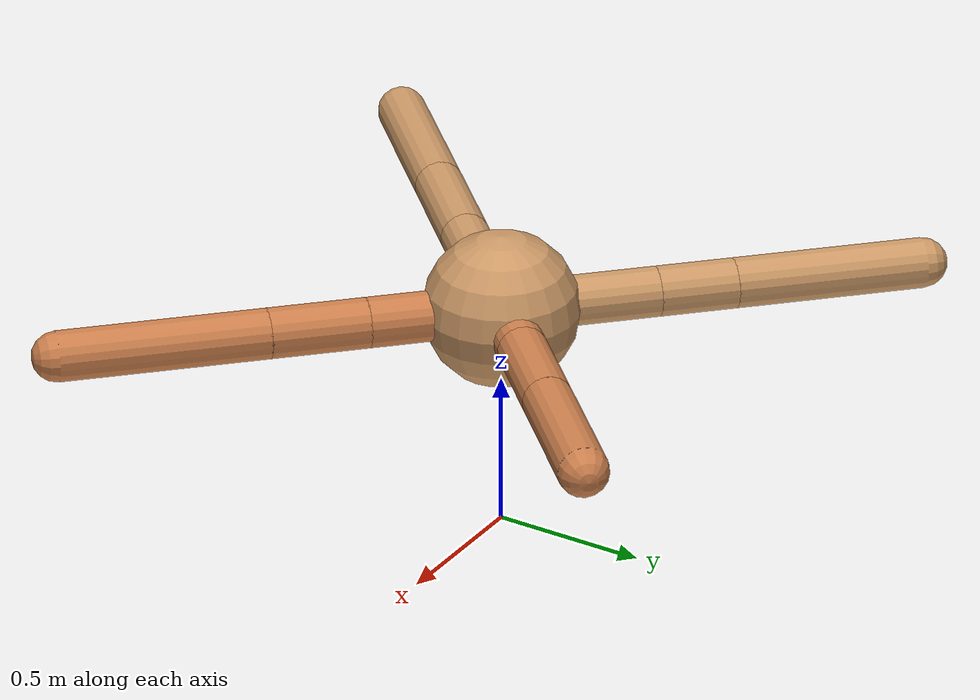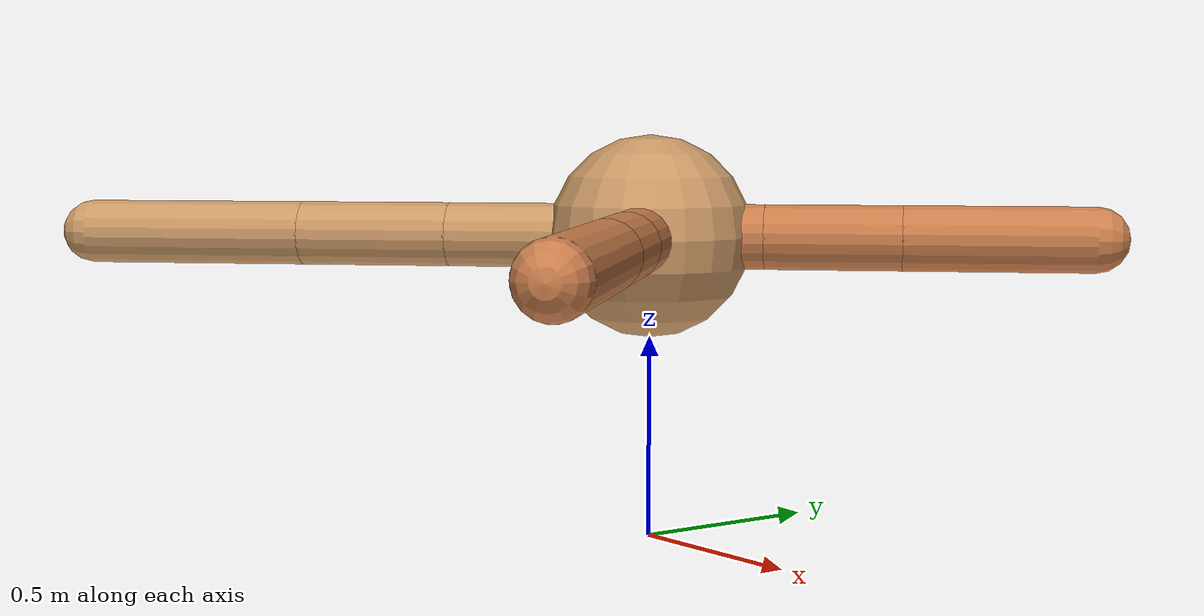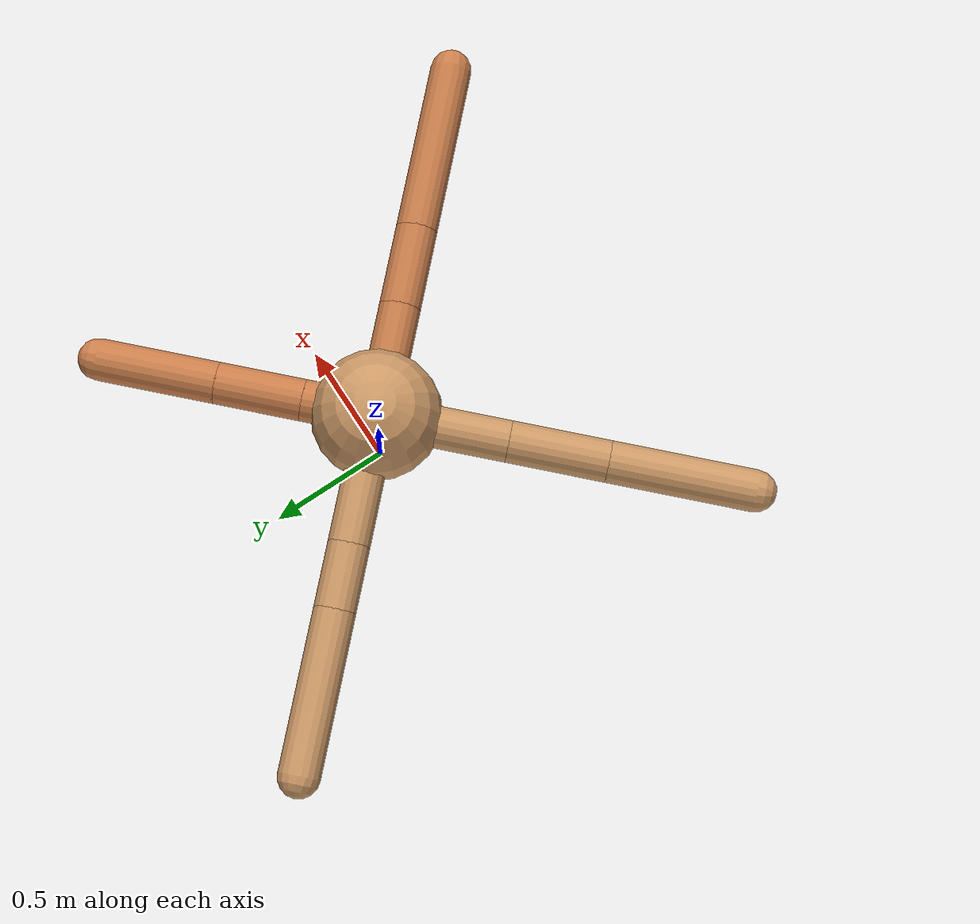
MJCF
<mujoco model="ant">
  <compiler angle="degree" coordinate="local" inertiafromgeom="true" />
  <option integrator="RK4" timestep="0.01" />
  <custom>
    <numeric data="0.0 0.0 0.55 1.0 0.0 0.0 0.0 0.0 1.0 0.0 -1.0 0.0 -1.0 0.0 1.0" name="init_qpos" />
  </custom>
  <default>
    <joint armature="1" damping="1" limited="true" />
    <geom conaffinity="0" condim="3" density="5.0" friction="1.5 0.1 0.1" margin="0.01" rgba="0.8 0.6 0.4 1" />
  </default>
  <worldbody>
    <body name="torso" pos="0 0 0.75">
      <geom name="torso_geom" pos="0 0 0" size="0.25" type="sphere" />

      <body name="front_left_leg" pos="0 0 0">
        <geom fromto="0.0 0.0 0.0 0.2 0.2 0.0" name="aux_1_geom" size="0.08" type="capsule" rgba=".8 .5 .3 1" />
        <body name="aux_1" pos="0.2 0.2 0.0">
          <joint axis="0 0 1" name="hip_1" pos="0.0 0.0 0.0" range="-40 40" type="hinge" />
          <geom fromto="0.0 0.0 0.0 0.23570349706327165 0.23570349706327165 0.0" name="left_leg_geom" size="0.08" type="capsule" rgba=".8 .5 .3 1" />
          <body pos="0.23570349706327165 0.23570349706327165 0.0" name="front_left_foot">
            <joint axis="-1 1 0" name="ankle_1" pos="0.0 0.0 0.0" range="30 100" type="hinge" />
            <geom fromto="0.0 0.0 0.0 0.3232113115499042 0.3232113115499042 0.0" name="left_ankle_geom" size="0.08" type="capsule" rgba=".8 .5 .3 1" />
          </body>
        </body>
      </body>
      <body name="front_right_leg" pos="0 0 0">
        <geom fromto="0.0 0.0 0.0 -0.35446857653288677 0.35446857653288677 0.0" name="aux_2_geom" size="0.08" type="capsule" />
        <body name="aux_2" pos="-0.35446857653288677 0.35446857653288677 0.0">
          <joint axis="0 0 1" name="hip_2" pos="0.0 0.0 0.0" range="-40 40" type="hinge" />
          <geom fromto="0.0 0.0 0.0 -0.17639614866400768 0.17639614866400768 0.0" name="right_leg_geom" size="0.08" type="capsule" />
          <body pos="-0.17639614866400768 0.17639614866400768 0.0" name="front_right_foot">
            <joint axis="1 1 0" name="ankle_2" pos="0.0 0.0 0.0" range="-100 -30" type="hinge" />
            <geom fromto="0.0 0.0 0.0 -0.43558054065691004 0.43558054065691004 0.0" name="right_ankle_geom" size="0.08" type="capsule" />
          </body>
        </body>
      </body>
      <body name="left_back_leg" pos="0 0 0">
        <geom fromto="0.0 0.0 0.0 -0.3575656349045816 -0.3575656349045816 0.0" name="aux_3_geom" size="0.08" type="capsule" />
        <body name="aux_3" pos="-0.3575656349045816 -0.3575656349045816 0.0">
          <joint axis="0 0 1" name="hip_3" pos="0.0 0.0 0.0" range="-40 40" type="hinge" />
          <geom fromto="0.0 0.0 0.0 -0.2677090069101559 -0.2677090069101559 0.0" name="back_leg_geom" size="0.08" type="capsule" />
          <body pos="-0.2677090069101559 -0.2677090069101559 0.0" name="left_back_foot">
            <joint axis="-1 1 0" name="ankle_3" pos="0.0 0.0 0.0" range="-100 -30" type="hinge" />
            <geom fromto="0.0 0.0 0.0 -0.39443584744999216 -0.39443584744999216 0.0" name="third_ankle_geom" size="0.08" type="capsule" />
          </body>
        </body>
      </body>
      <body name="right_back_leg" pos="0 0 0">
        <geom fromto="0.0 0.0 0.0 0.3022554135867648 -0.3022554135867648 0.0" name="aux_4_geom" size="0.08" type="capsule" rgba=".8 .5 .3 1" />
        <body name="aux_4" pos="0.3022554135867648 -0.3022554135867648 0.0">
          <joint axis="0 0 1" name="hip_4" pos="0.0 0.0 0.0" range="-40 40" type="hinge" />
          <geom fromto="0.0 0.0 0.0 0.22232529204017074 -0.22232529204017074 0.0" name="rightback_leg_geom" size="0.08" type="capsule" rgba=".8 .5 .3 1" />
          <body pos="0.22232529204017074 -0.22232529204017074 0.0" name="right_back_foot">
            <joint axis="1 1 0" name="ankle_4" pos="0.0 0.0 0.0" range="30 100" type="hinge" />
            <geom fromto="0.0 0.0 0.0 0.4696260229554489 -0.4696260229554489 0.0" name="fourth_ankle_geom" size="0.08" type="capsule" rgba=".8 .5 .3 1" />
          </body>
        </body>
      </body>
    </body>
  </worldbody>
  <actuator>
    <motor ctrllimited="true" ctrlrange="-1.0 1.0" joint="hip_4" gear="150" />
    <motor ctrllimited="true" ctrlrange="-1.0 1.0" joint="ankle_4" gear="150" />
    <motor ctrllimited="true" ctrlrange="-1.0 1.0" joint="hip_1" gear="150" />
    <motor ctrllimited="true" ctrlrange="-1.0 1.0" joint="ankle_1" gear="150" />
    <motor ctrllimited="true" ctrlrange="-1.0 1.0" joint="hip_2" gear="150" />
    <motor ctrllimited="true" ctrlrange="-1.0 1.0" joint="ankle_2" gear="150" />
    <motor ctrllimited="true" ctrlrange="-1.0 1.0" joint="hip_3" gear="150" />
    <motor ctrllimited="true" ctrlrange="-1.0 1.0" joint="ankle_3" gear="150" />
  </actuator>
</mujoco>
